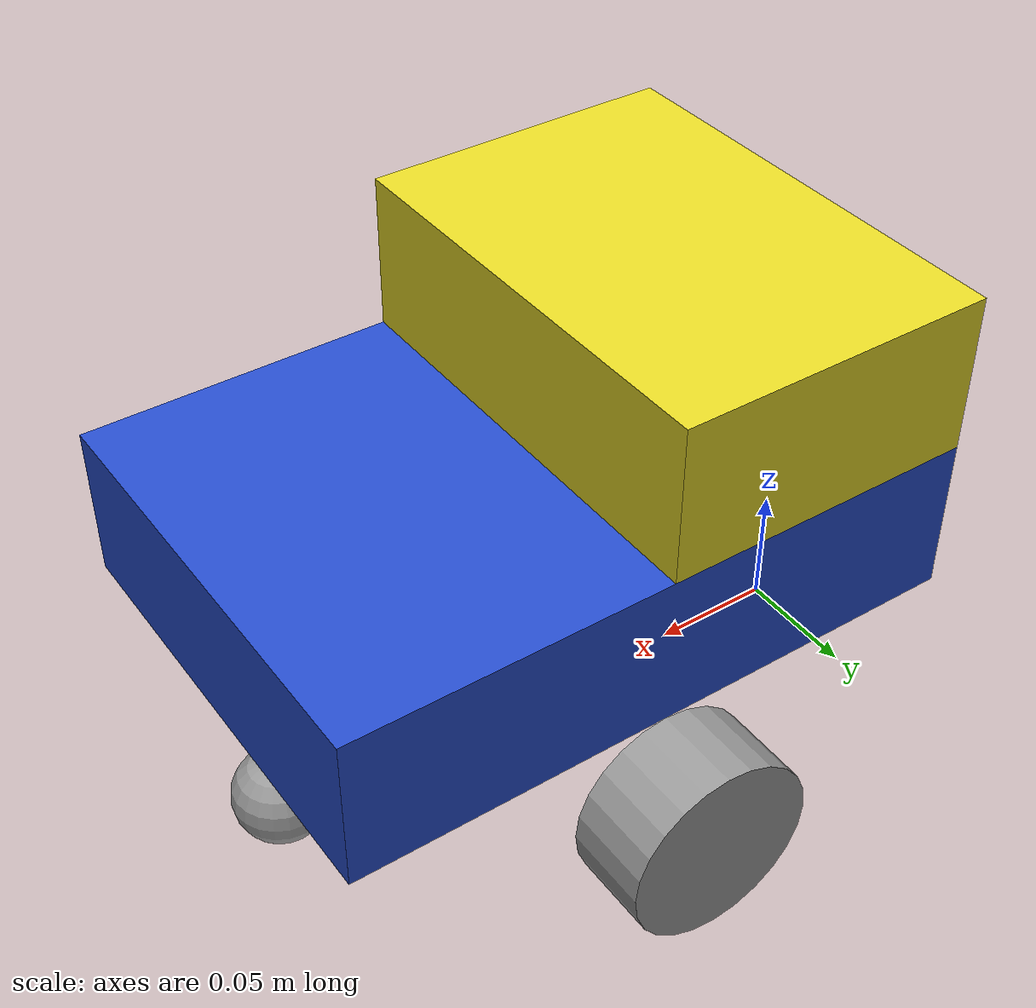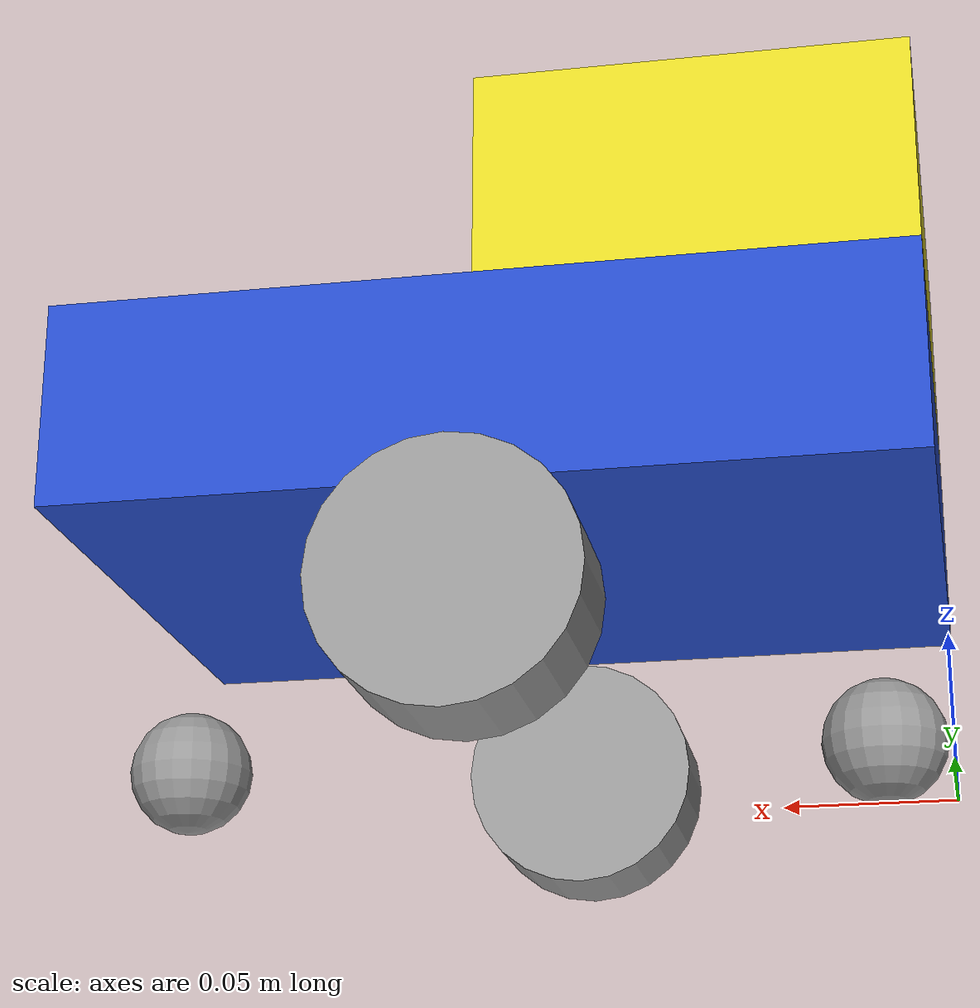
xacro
<?xml version="1.0"?>
<robot xmlns:xacro="http://www.ros.org/wiki/xacro">

    <!-- declare detail properties of diff bot -->

    <xacro:property name="base_length" value="0.25" />
    <xacro:property name="base_width" value="0.18" />
    <xacro:property name="base_height" value="0.062" />
    <xacro:property name="wheel_radius" value="0.037" />
    <xacro:property name="wheel_length" value="0.034" />
    <xacro:property name="wheel_caster" value="0.105" />
    <xacro:property name="lidar_pos_x" value="0.048" />
    <xacro:property name="lidar_height" value="0.065" />
    <xacro:property name="imu_x" value="0.0287" />
    <xacro:property name="imu_y" value="0.06" />
    <xacro:property name="imu_z" value="0.086" />

    <!-- declare link of diff bot -->

    <link name="base_footprint" />

    <link name="base_link">
        <visual>
            <geometry>
                <box size="${base_length} ${base_width} ${base_height}" />
            </geometry>
            <origin xyz="${base_length/2} 0 ${base_height / 2.0}" rpy="0 0 0" />
            <material name="blue" />
        </visual>
        <collision>
            <geometry>
                <box size="${base_length} ${base_width} ${base_height}" />
            </geometry>
            <origin xyz="${base_length/2} 0 ${base_height / 2.0}" rpy="0 0 0" />
        </collision>
        <xacro:box_inertia m="5.0" l="${2*base_length}" w="${2*base_width}" h="${2*base_height}"
                           xyz="0 0 ${base_height / 2.0}" rpy="0 0 0" />
    </link>

    <xacro:macro name="wheel_link" params="prefix">
        <link name="${prefix}_wheel_link">
            <visual>
                <geometry>
                    <cylinder radius="${wheel_radius}" length="${wheel_length}" />
                </geometry>
                <origin xyz="0 0 0" rpy="${pi / 2.0} 0 0" />
                <material name="grey" />
            </visual>
            <collision>
                <geometry>
                    <cylinder radius="${wheel_radius}" length="${wheel_length}" />
                </geometry>
                <origin xyz="0 0 0" rpy="${pi / 2.0} 0 0" />
            </collision>
            <xacro:cylinder_inertia m="1.0" r="${2*wheel_radius}" h="${2*wheel_length}"
                                    xyz="0 0 0" rpy="${pi / 2.0} 0 0" />
        </link>
    </xacro:macro>

    <xacro:wheel_link prefix="right" />
    <xacro:wheel_link prefix="left" />

    <link name="front_caster_wheel_link">
        <visual>
            <geometry>
                <sphere radius="${wheel_radius / 2.0}" />
            </geometry>
            <origin xyz="0 0 0" rpy="0 0 0" />
            <material name="grey" />
        </visual>
        <collision>
            <geometry>
                <sphere radius="${wheel_radius / 2.0}" />
            </geometry>
            <origin xyz="0 0 0" rpy="0 0 0" />
        </collision>
        <xacro:sphere_inertia m="0.5" r="${2*wheel_radius / 2.0}"
                              xyz="0 0 0" rpy="0 0 0" />
    </link>

    <link name="behind_caster_wheel_link">
        <visual>
            <geometry>
                <sphere radius="${wheel_radius / 2.0}" />
            </geometry>
            <origin xyz="0 0 0" rpy="0 0 0" />
            <material name="grey" />
        </visual>
        <collision>
            <geometry>
                <sphere radius="${wheel_radius / 2.0}" />
            </geometry>
            <origin xyz="0 0 0" rpy="0 0 0" />
        </collision>
        <xacro:sphere_inertia m="0.5" r="${2*wheel_radius / 2.0}"
                              xyz="0 0 0" rpy="0 0 0" />
    </link>

    <link name="third_floor_link">
        <visual>
            <geometry>
                <box size="${base_length/2} ${base_width} ${base_height}" />
            </geometry>
            <origin xyz="0 0 0" rpy="0 0 0" />
            <material name="yellow" />
        </visual>
        <collision>
            <geometry>
                <box size="${base_length/2} ${base_width} ${base_height}" />
            </geometry>
            <origin xyz="0 0 0" rpy="0 0 0" />
        </collision>
        <xacro:box_inertia m="5.0" l="${base_length}" w="${2*base_width}" h="${2*base_height}"
                           xyz="0 0 0" rpy="0 0 0" />
    </link>

    <link name="imu_link">
        <visual>
            <origin xyz="0.0 0.0 0.0" rpy="0.0 0.0 0.0"/>
            <geometry>
                <box size="0.0208 0.0158 0.0016"/>
            </geometry>
        </visual>
        <collision>
            <origin xyz="0.0 0.0 0.0" rpy="0.0 0.0 0.0"/>
            <geometry>
            <box size="0.0208 0.0158 0.0016"/>
            </geometry>
        </collision>
    </link>
    <!-- declare joint of diff bot -->

    <joint name="base_joint" type="fixed">
        <parent link="base_footprint" />
        <child link="base_link" />
        <origin xyz="0 0 ${2*wheel_radius}" rpy="0 0 0"/>
    </joint>

    <joint name="base_right_wheel_joint" type="continuous">
        <parent link="base_link" />
        <child link="right_wheel_link" />
        <origin xyz="${base_length/2} ${-(base_width + wheel_length) / 2.0} ${-wheel_radius}" rpy="0 0 ${pi}" />
        <axis xyz="0 -1 0" />
    </joint>

    <joint name="base_left_wheel_joint" type="continuous">
        <parent link="base_link" />
        <child link="left_wheel_link" />
        <origin xyz="${base_length/2} ${(base_width + wheel_length) / 2.0} ${-wheel_radius}" rpy="0 0 0" />
        <axis xyz="0 1 0" />
    </joint>

    <joint name="base_front_caster_wheel_joint" type="fixed">
        <parent link="base_link" />
        <child link="front_caster_wheel_link" />
        <origin xyz="${wheel_caster + base_length/2} 0 ${-3/2*wheel_radius}" rpy="0 0 0" />
    </joint>

    <joint name="base_behind_caster_wheel_joint" type="fixed">
        <parent link="base_link" />
        <child link="behind_caster_wheel_link" />
        <origin xyz="${-wheel_caster + base_length/2} 0 ${-3/2*wheel_radius}" rpy="0 0 0" />
    </joint>

    <joint name="third_floor_joint" type="fixed">
        <parent link="base_link"/>
        <child link="third_floor_link"/>
        <origin xyz="${-base_length/4 + base_length/2} 0.0 ${1.5*base_height}" rpy="0.0 0.0 0.0"/>
    </joint>

    <joint name="imu_joint" type="fixed">
        <parent link="base_link"/>
        <child link="imu_link"/>
        <origin xyz="${imu_x} ${-imu_y} ${imu_z}" rpy="0.0 0.0 0.0"/>
    </joint>
</robot>
